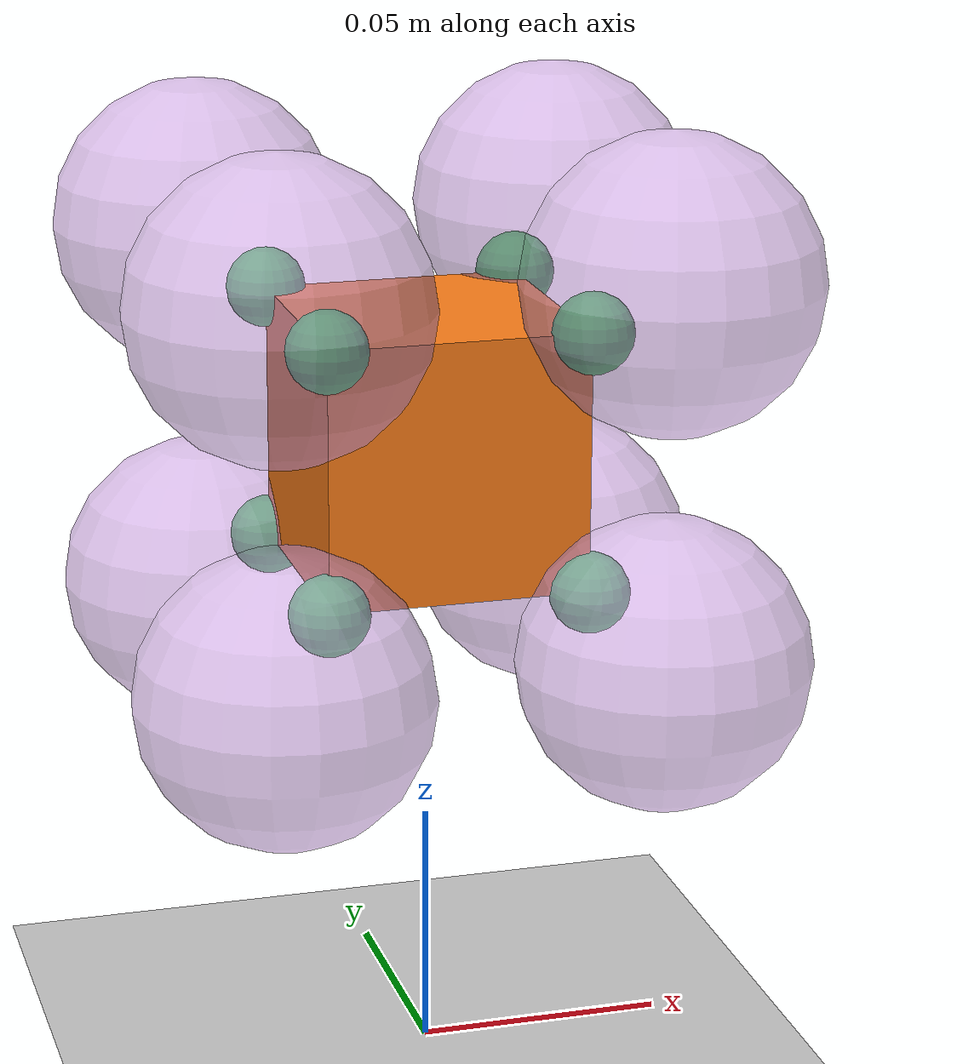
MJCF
<mujoco model="ballooance">

  <compiler angle="radian" autolimits="true"/>

  <option timestep="0.0005" gravity="0 0 -9.81" iterations="500"
          solver="Newton" cone="elliptic" jacobian="dense"
          impratio="3"/>

  <visual>
    <headlight ambient="0.3 0.3 0.3" diffuse="0.6 0.6 0.6"/>
  </visual>

  <asset>
    <texture type="skybox" builtin="gradient" rgb1="0.8 0.9 1.0" rgb2="0.4 0.6 0.8" width="512" height="512"/>
    <texture name="grid" type="2d" builtin="checker" rgb1="0.85 0.85 0.85" rgb2="0.7 0.7 0.7" width="512" height="512"/>
    <material name="grid_mat"    texture="grid" texrepeat="4 4" reflectance="0.1"/>
    <material name="core_mat"    rgba="1.0 0.5 0.1 1.0"/>
    <material name="plate_mat"   rgba="0.2 0.8 0.3 1.0"/>
    <material name="balloon_mat" rgba="0.8 0.6 0.9 0.55"/>
  </asset>

  <default>
    <geom condim="6"
          friction="3.0 0.05 0.05"
          solimp="0.99 0.999 0.001 0.5 2"
          solref="0.005 2"/>
    <joint damping="3.0" stiffness="0"/>
  </default>

  <worldbody>

    <geom name="floor" type="plane" size="2 2 0.1" material="grid_mat"
          friction="3.0 0.05 0.05"
          solimp="0.99 0.999 0.001 0.5 2"
          solref="0.005 2"/>

    <!-- 跟踪相机：env.render() 调用 camera="track_core" 需要这个 -->
    <camera name="track_core" mode="trackcom" pos="0 -0.6 0.35"
            xyaxes="1 0 0 0 0.5 0.866"/>

    <body name="core" pos="0 0 0.13">
      <freejoint name="root"/>
      <geom name="core_geom" type="box" size="0.026 0.026 0.026"
            mass="0.2" material="core_mat"/>
      <site name="core_site" size="0.003"/>

      <!-- ============ BALLOON 0 : corner (+,+,+)  outward = ( 1, 1, 1)/√3 ============ -->
      <body name="plate_0" pos="0.026 0.026 0.026">
        <joint name="snap_0" type="ball" range="0 0.5" damping="0.3" stiffness="3.0"/>
        <geom name="plate_0_geom" type="sphere" size="0.008" mass="0.015" material="plate_mat"/>
        <body name="balloon_0" pos="0.01155 0.01155 0.01155">
          <joint name="expand_0" type="slide" axis="0.5774 0.5774 0.5774" range="0 0.058"/>
          <geom name="balloon_0_geom" type="sphere" size="0.029" mass="0.04" material="balloon_mat"/>
        </body>
      </body>

      <!-- ============ BALLOON 1 : corner (+,+,-)  outward = ( 1, 1,-1)/√3 ============ -->
      <body name="plate_1" pos="0.026 0.026 -0.026">
        <joint name="snap_1" type="ball" range="0 0.5" damping="0.3" stiffness="3.0"/>
        <geom name="plate_1_geom" type="sphere" size="0.008" mass="0.015" material="plate_mat"/>
        <body name="balloon_1" pos="0.01155 0.01155 -0.01155">
          <joint name="expand_1" type="slide" axis="0.5774 0.5774 -0.5774" range="0 0.058"/>
          <geom name="balloon_1_geom" type="sphere" size="0.029" mass="0.04" material="balloon_mat"/>
        </body>
      </body>

      <!-- ============ BALLOON 2 : corner (+,-,+)  outward = ( 1,-1, 1)/√3 ============ -->
      <body name="plate_2" pos="0.026 -0.026 0.026">
        <joint name="snap_2" type="ball" range="0 0.5" damping="0.3" stiffness="3.0"/>
        <geom name="plate_2_geom" type="sphere" size="0.008" mass="0.015" material="plate_mat"/>
        <body name="balloon_2" pos="0.01155 -0.01155 0.01155">
          <joint name="expand_2" type="slide" axis="0.5774 -0.5774 0.5774" range="0 0.058"/>
          <geom name="balloon_2_geom" type="sphere" size="0.029" mass="0.04" material="balloon_mat"/>
        </body>
      </body>

      <!-- ============ BALLOON 3 : corner (+,-,-)  outward = ( 1,-1,-1)/√3 ============ -->
      <body name="plate_3" pos="0.026 -0.026 -0.026">
        <joint name="snap_3" type="ball" range="0 0.5" damping="0.3" stiffness="3.0"/>
        <geom name="plate_3_geom" type="sphere" size="0.008" mass="0.015" material="plate_mat"/>
        <body name="balloon_3" pos="0.01155 -0.01155 -0.01155">
          <joint name="expand_3" type="slide" axis="0.5774 -0.5774 -0.5774" range="0 0.058"/>
          <geom name="balloon_3_geom" type="sphere" size="0.029" mass="0.04" material="balloon_mat"/>
        </body>
      </body>

      <!-- ============ BALLOON 4 : corner (-,+,+)  outward = (-1, 1, 1)/√3 ============ -->
      <body name="plate_4" pos="-0.026 0.026 0.026">
        <joint name="snap_4" type="ball" range="0 0.5" damping="0.3" stiffness="3.0"/>
        <geom name="plate_4_geom" type="sphere" size="0.008" mass="0.015" material="plate_mat"/>
        <body name="balloon_4" pos="-0.01155 0.01155 0.01155">
          <joint name="expand_4" type="slide" axis="-0.5774 0.5774 0.5774" range="0 0.058"/>
          <geom name="balloon_4_geom" type="sphere" size="0.029" mass="0.04" material="balloon_mat"/>
        </body>
      </body>

      <!-- ============ BALLOON 5 : corner (-,+,-)  outward = (-1, 1,-1)/√3 ============ -->
      <body name="plate_5" pos="-0.026 0.026 -0.026">
        <joint name="snap_5" type="ball" range="0 0.5" damping="0.3" stiffness="3.0"/>
        <geom name="plate_5_geom" type="sphere" size="0.008" mass="0.015" material="plate_mat"/>
        <body name="balloon_5" pos="-0.01155 0.01155 -0.01155">
          <joint name="expand_5" type="slide" axis="-0.5774 0.5774 -0.5774" range="0 0.058"/>
          <geom name="balloon_5_geom" type="sphere" size="0.029" mass="0.04" material="balloon_mat"/>
        </body>
      </body>

      <!-- ============ BALLOON 6 : corner (-,-,+)  outward = (-1,-1, 1)/√3 ============ -->
      <body name="plate_6" pos="-0.026 -0.026 0.026">
        <joint name="snap_6" type="ball" range="0 0.5" damping="0.3" stiffness="3.0"/>
        <geom name="plate_6_geom" type="sphere" size="0.008" mass="0.015" material="plate_mat"/>
        <body name="balloon_6" pos="-0.01155 -0.01155 0.01155">
          <joint name="expand_6" type="slide" axis="-0.5774 -0.5774 0.5774" range="0 0.058"/>
          <geom name="balloon_6_geom" type="sphere" size="0.029" mass="0.04" material="balloon_mat"/>
        </body>
      </body>

      <!-- ============ BALLOON 7 : corner (-,-,-)  outward = (-1,-1,-1)/√3 ============ -->
      <body name="plate_7" pos="-0.026 -0.026 -0.026">
        <joint name="snap_7" type="ball" range="0 0.5" damping="0.3" stiffness="3.0"/>
        <geom name="plate_7_geom" type="sphere" size="0.008" mass="0.015" material="plate_mat"/>
        <body name="balloon_7" pos="-0.01155 -0.01155 -0.01155">
          <joint name="expand_7" type="slide" axis="-0.5774 -0.5774 -0.5774" range="0 0.058"/>
          <geom name="balloon_7_geom" type="sphere" size="0.029" mass="0.04" material="balloon_mat"/>
        </body>
      </body>

    </body><!-- end core -->
  </worldbody>

  <actuator>
    <position name="act_0" joint="expand_0" kp="25" gear="1" ctrlrange="0 0.058"/>
    <position name="act_1" joint="expand_1" kp="25" gear="1" ctrlrange="0 0.058"/>
    <position name="act_2" joint="expand_2" kp="25" gear="1" ctrlrange="0 0.058"/>
    <position name="act_3" joint="expand_3" kp="25" gear="1" ctrlrange="0 0.058"/>
    <position name="act_4" joint="expand_4" kp="25" gear="1" ctrlrange="0 0.058"/>
    <position name="act_5" joint="expand_5" kp="25" gear="1" ctrlrange="0 0.058"/>
    <position name="act_6" joint="expand_6" kp="25" gear="1" ctrlrange="0 0.058"/>
    <position name="act_7" joint="expand_7" kp="25" gear="1" ctrlrange="0 0.058"/>
  </actuator>

  <sensor>
    <!-- 全局轨迹（ground truth，用于 sim-real 比较的"真值"轨迹） -->
    <framepos    name="core_pos"    objtype="body" objname="core"/>
    <framelinvel name="core_vel"    objtype="body" objname="core"/>
    <frameangvel name="core_angvel" objtype="body" objname="core"/>
    <framequat   name="core_quat"   objtype="body" objname="core"/>
    <!-- IMU sensors (装在 core_site)：与实物 IMU 同源信号 -->
    <accelerometer name="imu_accel" site="core_site"/>
    <gyro          name="imu_gyro"  site="core_site"/>
  </sensor>

</mujoco>
